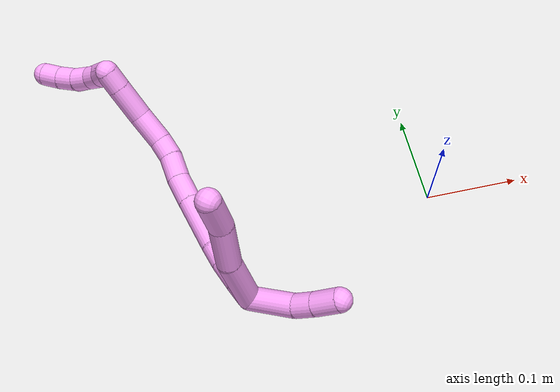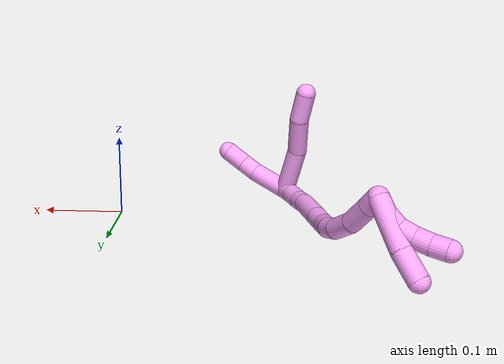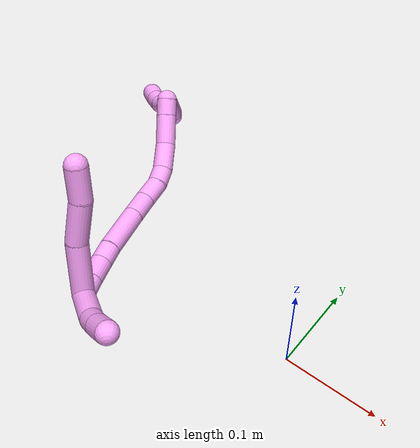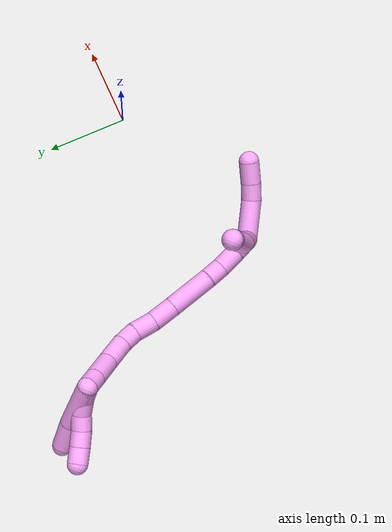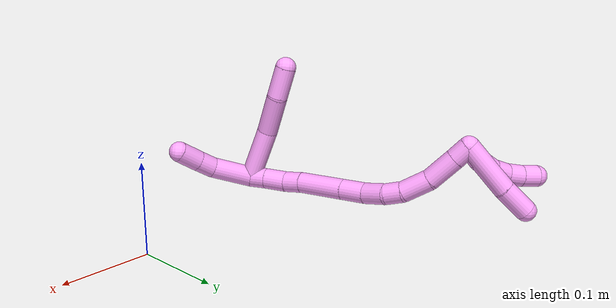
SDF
<sdf version="1.7">
 <world name="default">
  <model name="4">
   <static>0</static>
   <link name="4">
    <collision name="collision-cylinder-e_1_2_8">
     <pose>0.01801 0.024901 0.00799 -1.26032 0.603073 -0.446139</pose>
     <geometry><cylinder><radius>0.0125</radius><length>0.063506</length></cylinder></geometry>
     <surface>
      <friction><ode><mu>1.16</mu><mu2>1.16</mu2><slip1>0</slip1><slip2>0</slip2></ode></friction>
      <contact><ode><kp>1e+06</kp><kd>1</kd><max_vel>0</max_vel><min_depth>0.001</min_depth></ode></contact>
     </surface>
    </collision>
    <visual name="visual-cylinder-e_1_2_8">
     <pose>0.01801 0.024901 0.00799 -1.26032 0.603073 -0.446139</pose>
     <geometry><cylinder><radius>0.0125</radius><length>0.063506</length></cylinder></geometry>
     <material><ambient>1 0.65098 0.996078 1</ambient></material>
    </visual>
    <collision name="collision-cylinder-e_2_8_9">
     <pose>0.045808 0.071683 0.020093 -1.38495 0.414241 -0.345146</pose>
     <geometry><cylinder><radius>0.0125</radius><length>0.048641</length></cylinder></geometry>
     <surface>
      <friction><ode><mu>1.16</mu><mu2>1.16</mu2><slip1>0</slip1><slip2>0</slip2></ode></friction>
      <contact><ode><kp>1e+06</kp><kd>1</kd><max_vel>0</max_vel><min_depth>0.001</min_depth></ode></contact>
     </surface>
    </collision>
    <visual name="visual-cylinder-e_2_8_9">
     <pose>0.045808 0.071683 0.020093 -1.38495 0.414241 -0.345146</pose>
     <geometry><cylinder><radius>0.0125</radius><length>0.048641</length></cylinder></geometry>
     <material><ambient>1 0.65098 0.996078 1</ambient></material>
    </visual>
    <collision name="collision-cylinder-e_3_9_6">
     <pose>0.066674 0.108468 0.027863 -1.33029 0.625196 -0.496555</pose>
     <geometry><cylinder><radius>0.0125</radius><length>0.037853</length></cylinder></geometry>
     <surface>
      <friction><ode><mu>1.16</mu><mu2>1.16</mu2><slip1>0</slip1><slip2>0</slip2></ode></friction>
      <contact><ode><kp>1e+06</kp><kd>1</kd><max_vel>0</max_vel><min_depth>0.001</min_depth></ode></contact>
     </surface>
    </collision>
    <visual name="visual-cylinder-e_3_9_6">
     <pose>0.066674 0.108468 0.027863 -1.33029 0.625196 -0.496555</pose>
     <geometry><cylinder><radius>0.0125</radius><length>0.037853</length></cylinder></geometry>
     <material><ambient>1 0.65098 0.996078 1</ambient></material>
    </visual>
    <collision name="collision-cylinder-e_1_2_10">
     <pose>-0.000712 0.008224 -0.024019 -2.81169 -0.028025 0.167975</pose>
     <geometry><cylinder><radius>0.0125</radius><length>0.050797</length></cylinder></geometry>
     <surface>
      <friction><ode><mu>1.16</mu><mu2>1.16</mu2><slip1>0</slip1><slip2>0</slip2></ode></friction>
      <contact><ode><kp>1e+06</kp><kd>1</kd><max_vel>0</max_vel><min_depth>0.001</min_depth></ode></contact>
     </surface>
    </collision>
    <visual name="visual-cylinder-e_1_2_10">
     <pose>-0.000712 0.008224 -0.024019 -2.81169 -0.028025 0.167975</pose>
     <geometry><cylinder><radius>0.0125</radius><length>0.050797</length></cylinder></geometry>
     <material><ambient>1 0.65098 0.996078 1</ambient></material>
    </visual>
    <collision name="collision-cylinder-e_2_10_11">
     <pose>-0.001403 0.022529 -0.057036 -2.54735 0.001853 -0.006051</pose>
     <geometry><cylinder><radius>0.0125</radius><length>0.021718</length></cylinder></geometry>
     <surface>
      <friction><ode><mu>1.16</mu><mu2>1.16</mu2><slip1>0</slip1><slip2>0</slip2></ode></friction>
      <contact><ode><kp>1e+06</kp><kd>1</kd><max_vel>0</max_vel><min_depth>0.001</min_depth></ode></contact>
     </surface>
    </collision>
    <visual name="visual-cylinder-e_2_10_11">
     <pose>-0.001403 0.022529 -0.057036 -2.54735 0.001853 -0.006051</pose>
     <geometry><cylinder><radius>0.0125</radius><length>0.021718</length></cylinder></geometry>
     <material><ambient>1 0.65098 0.996078 1</ambient></material>
    </visual>
    <collision name="collision-cylinder-e_3_11_5">
     <pose>-0.001658 0.036995 -0.076917 -2.48503 -0.020011 0.058737</pose>
     <geometry><cylinder><radius>0.0125</radius><length>0.027485</length></cylinder></geometry>
     <surface>
      <friction><ode><mu>1.16</mu><mu2>1.16</mu2><slip1>0</slip1><slip2>0</slip2></ode></friction>
      <contact><ode><kp>1e+06</kp><kd>1</kd><max_vel>0</max_vel><min_depth>0.001</min_depth></ode></contact>
     </surface>
    </collision>
    <visual name="visual-cylinder-e_3_11_5">
     <pose>-0.001658 0.036995 -0.076917 -2.48503 -0.020011 0.058737</pose>
     <geometry><cylinder><radius>0.0125</radius><length>0.027485</length></cylinder></geometry>
     <material><ambient>1 0.65098 0.996078 1</ambient></material>
    </visual>
    <collision name="collision-cylinder-e_1_2_12">
     <pose>-0.002663 0.003248 0.009762 -0.321189 -0.253305 0.041248</pose>
     <geometry><cylinder><radius>0.0125</radius><length>0.021254</length></cylinder></geometry>
     <surface>
      <friction><ode><mu>1.16</mu><mu2>1.16</mu2><slip1>0</slip1><slip2>0</slip2></ode></friction>
      <contact><ode><kp>1e+06</kp><kd>1</kd><max_vel>0</max_vel><min_depth>0.001</min_depth></ode></contact>
     </surface>
    </collision>
    <visual name="visual-cylinder-e_1_2_12">
     <pose>-0.002663 0.003248 0.009762 -0.321189 -0.253305 0.041248</pose>
     <geometry><cylinder><radius>0.0125</radius><length>0.021254</length></cylinder></geometry>
     <material><ambient>1 0.65098 0.996078 1</ambient></material>
    </visual>
    <collision name="collision-cylinder-e_2_12_13">
     <pose>-0.009301 0.010606 0.031855 -0.321786 -0.296738 0.048506</pose>
     <geometry><cylinder><radius>0.0125</radius><length>0.027185</length></cylinder></geometry>
     <surface>
      <friction><ode><mu>1.16</mu><mu2>1.16</mu2><slip1>0</slip1><slip2>0</slip2></ode></friction>
      <contact><ode><kp>1e+06</kp><kd>1</kd><max_vel>0</max_vel><min_depth>0.001</min_depth></ode></contact>
     </surface>
    </collision>
    <visual name="visual-cylinder-e_2_12_13">
     <pose>-0.009301 0.010606 0.031855 -0.321786 -0.296738 0.048506</pose>
     <geometry><cylinder><radius>0.0125</radius><length>0.027185</length></cylinder></geometry>
     <material><ambient>1 0.65098 0.996078 1</ambient></material>
    </visual>
    <collision name="collision-cylinder-e_3_13_14">
     <pose>-0.016074 0.019416 0.053456 -0.469104 -0.263022 0.063193</pose>
     <geometry><cylinder><radius>0.0125</radius><length>0.021527</length></cylinder></geometry>
     <surface>
      <friction><ode><mu>1.16</mu><mu2>1.16</mu2><slip1>0</slip1><slip2>0</slip2></ode></friction>
      <contact><ode><kp>1e+06</kp><kd>1</kd><max_vel>0</max_vel><min_depth>0.001</min_depth></ode></contact>
     </surface>
    </collision>
    <visual name="visual-cylinder-e_3_13_14">
     <pose>-0.016074 0.019416 0.053456 -0.469104 -0.263022 0.063193</pose>
     <geometry><cylinder><radius>0.0125</radius><length>0.021527</length></cylinder></geometry>
     <material><ambient>1 0.65098 0.996078 1</ambient></material>
    </visual>
    <collision name="collision-cylinder-e_4_14_15">
     <pose>-0.028833 0.035183 0.086917 -0.429099 -0.35829 0.078878</pose>
     <geometry><cylinder><radius>0.0125</radius><length>0.056813</length></cylinder></geometry>
     <surface>
      <friction><ode><mu>1.16</mu><mu2>1.16</mu2><slip1>0</slip1><slip2>0</slip2></ode></friction>
      <contact><ode><kp>1e+06</kp><kd>1</kd><max_vel>0</max_vel><min_depth>0.001</min_depth></ode></contact>
     </surface>
    </collision>
    <visual name="visual-cylinder-e_4_14_15">
     <pose>-0.028833 0.035183 0.086917 -0.429099 -0.35829 0.078878</pose>
     <geometry><cylinder><radius>0.0125</radius><length>0.056813</length></cylinder></geometry>
     <material><ambient>1 0.65098 0.996078 1</ambient></material>
    </visual>
    <collision name="collision-cylinder-e_5_15_16">
     <pose>-0.044136 0.052248 0.123722 -0.443822 -0.365241 0.083289</pose>
     <geometry><cylinder><radius>0.0125</radius><length>0.029908</length></cylinder></geometry>
     <surface>
      <friction><ode><mu>1.16</mu><mu2>1.16</mu2><slip1>0</slip1><slip2>0</slip2></ode></friction>
      <contact><ode><kp>1e+06</kp><kd>1</kd><max_vel>0</max_vel><min_depth>0.001</min_depth></ode></contact>
     </surface>
    </collision>
    <visual name="visual-cylinder-e_5_15_16">
     <pose>-0.044136 0.052248 0.123722 -0.443822 -0.365241 0.083289</pose>
     <geometry><cylinder><radius>0.0125</radius><length>0.029908</length></cylinder></geometry>
     <material><ambient>1 0.65098 0.996078 1</ambient></material>
    </visual>
    <collision name="collision-cylinder-e_6_16_17">
     <pose>-0.054198 0.066189 0.14693 -0.643397 -0.342512 0.115153</pose>
     <geometry><cylinder><radius>0.0125</radius><length>0.028113</length></cylinder></geometry>
     <surface>
      <friction><ode><mu>1.16</mu><mu2>1.16</mu2><slip1>0</slip1><slip2>0</slip2></ode></friction>
      <contact><ode><kp>1e+06</kp><kd>1</kd><max_vel>0</max_vel><min_depth>0.001</min_depth></ode></contact>
     </surface>
    </collision>
    <visual name="visual-cylinder-e_6_16_17">
     <pose>-0.054198 0.066189 0.14693 -0.643397 -0.342512 0.115153</pose>
     <geometry><cylinder><radius>0.0125</radius><length>0.028113</length></cylinder></geometry>
     <material><ambient>1 0.65098 0.996078 1</ambient></material>
    </visual>
    <collision name="collision-cylinder-e_7_17_18">
     <pose>-0.060041 0.079756 0.166712 -0.549211 -0.10373 0.029247</pose>
     <geometry><cylinder><radius>0.0125</radius><length>0.021665</length></cylinder></geometry>
     <surface>
      <friction><ode><mu>1.16</mu><mu2>1.16</mu2><slip1>0</slip1><slip2>0</slip2></ode></friction>
      <contact><ode><kp>1e+06</kp><kd>1</kd><max_vel>0</max_vel><min_depth>0.001</min_depth></ode></contact>
     </surface>
    </collision>
    <visual name="visual-cylinder-e_7_17_18">
     <pose>-0.060041 0.079756 0.166712 -0.549211 -0.10373 0.029247</pose>
     <geometry><cylinder><radius>0.0125</radius><length>0.021665</length></cylinder></geometry>
     <material><ambient>1 0.65098 0.996078 1</ambient></material>
    </visual>
    <collision name="collision-cylinder-e_8_18_19">
     <pose>-0.058053 0.095441 0.189736 -0.628748 0.179777 -0.058597</pose>
     <geometry><cylinder><radius>0.0125</radius><length>0.034773</length></cylinder></geometry>
     <surface>
      <friction><ode><mu>1.16</mu><mu2>1.16</mu2><slip1>0</slip1><slip2>0</slip2></ode></friction>
      <contact><ode><kp>1e+06</kp><kd>1</kd><max_vel>0</max_vel><min_depth>0.001</min_depth></ode></contact>
     </surface>
    </collision>
    <visual name="visual-cylinder-e_8_18_19">
     <pose>-0.058053 0.095441 0.189736 -0.628748 0.179777 -0.058597</pose>
     <geometry><cylinder><radius>0.0125</radius><length>0.034773</length></cylinder></geometry>
     <material><ambient>1 0.65098 0.996078 1</ambient></material>
    </visual>
    <collision name="collision-cylinder-e_9_19_20">
     <pose>-0.048146 0.118398 0.215675 -0.817128 0.366997 -0.160345</pose>
     <geometry><cylinder><radius>0.0125</radius><length>0.037897</length></cylinder></geometry>
     <surface>
      <friction><ode><mu>1.16</mu><mu2>1.16</mu2><slip1>0</slip1><slip2>0</slip2></ode></friction>
      <contact><ode><kp>1e+06</kp><kd>1</kd><max_vel>0</max_vel><min_depth>0.001</min_depth></ode></contact>
     </surface>
    </collision>
    <visual name="visual-cylinder-e_9_19_20">
     <pose>-0.048146 0.118398 0.215675 -0.817128 0.366997 -0.160345</pose>
     <geometry><cylinder><radius>0.0125</radius><length>0.037897</length></cylinder></geometry>
     <material><ambient>1 0.65098 0.996078 1</ambient></material>
    </visual>
    <collision name="collision-cylinder-e_10_20_1">
     <pose>-0.037537 0.138535 0.234253 -0.841139 0.373773 -0.168744</pose>
     <geometry><cylinder><radius>0.0125</radius><length>0.020867</length></cylinder></geometry>
     <surface>
      <friction><ode><mu>1.16</mu><mu2>1.16</mu2><slip1>0</slip1><slip2>0</slip2></ode></friction>
      <contact><ode><kp>1e+06</kp><kd>1</kd><max_vel>0</max_vel><min_depth>0.001</min_depth></ode></contact>
     </surface>
    </collision>
    <visual name="visual-cylinder-e_10_20_1">
     <pose>-0.037537 0.138535 0.234253 -0.841139 0.373773 -0.168744</pose>
     <geometry><cylinder><radius>0.0125</radius><length>0.020867</length></cylinder></geometry>
     <material><ambient>1 0.65098 0.996078 1</ambient></material>
    </visual>
    <collision name="collision-cylinder-e_1_1_21">
     <pose>-0.038615 0.14028 0.247504 0.681369 -0.510626 -0.184534</pose>
     <geometry><cylinder><radius>0.0125</radius><length>0.02</length></cylinder></geometry>
     <surface>
      <friction><ode><mu>1.16</mu><mu2>1.16</mu2><slip1>0</slip1><slip2>0</slip2></ode></friction>
      <contact><ode><kp>1e+06</kp><kd>1</kd><max_vel>0</max_vel><min_depth>0.001</min_depth></ode></contact>
     </surface>
    </collision>
    <visual name="visual-cylinder-e_1_1_21">
     <pose>-0.038615 0.14028 0.247504 0.681369 -0.510626 -0.184534</pose>
     <geometry><cylinder><radius>0.0125</radius><length>0.02</length></cylinder></geometry>
     <material><ambient>1 0.65098 0.996078 1</ambient></material>
    </visual>
    <collision name="collision-cylinder-e_2_21_22">
     <pose>-0.045963 0.129985 0.262701 0.518096 -0.248614 -0.066201</pose>
     <geometry><cylinder><radius>0.0125</radius><length>0.02</length></cylinder></geometry>
     <surface>
      <friction><ode><mu>1.16</mu><mu2>1.16</mu2><slip1>0</slip1><slip2>0</slip2></ode></friction>
      <contact><ode><kp>1e+06</kp><kd>1</kd><max_vel>0</max_vel><min_depth>0.001</min_depth></ode></contact>
     </surface>
    </collision>
    <visual name="visual-cylinder-e_2_21_22">
     <pose>-0.045963 0.129985 0.262701 0.518096 -0.248614 -0.066201</pose>
     <geometry><cylinder><radius>0.0125</radius><length>0.02</length></cylinder></geometry>
     <material><ambient>1 0.65098 0.996078 1</ambient></material>
    </visual>
    <collision name="collision-cylinder-e_3_22_23">
     <pose>-0.047545 0.12079 0.280061 0.456984 0.087916 0.020458</pose>
     <geometry><cylinder><radius>0.0125</radius><length>0.02</length></cylinder></geometry>
     <surface>
      <friction><ode><mu>1.16</mu><mu2>1.16</mu2><slip1>0</slip1><slip2>0</slip2></ode></friction>
      <contact><ode><kp>1e+06</kp><kd>1</kd><max_vel>0</max_vel><min_depth>0.001</min_depth></ode></contact>
     </surface>
    </collision>
    <visual name="visual-cylinder-e_3_22_23">
     <pose>-0.047545 0.12079 0.280061 0.456984 0.087916 0.020458</pose>
     <geometry><cylinder><radius>0.0125</radius><length>0.02</length></cylinder></geometry>
     <material><ambient>1 0.65098 0.996078 1</ambient></material>
    </visual>
    <collision name="collision-cylinder-e_4_23_24">
     <pose>-0.045494 0.113946 0.298624 0.249068 0.117557 0.014733</pose>
     <geometry><cylinder><radius>0.0125</radius><length>0.02</length></cylinder></geometry>
     <surface>
      <friction><ode><mu>1.16</mu><mu2>1.16</mu2><slip1>0</slip1><slip2>0</slip2></ode></friction>
      <contact><ode><kp>1e+06</kp><kd>1</kd><max_vel>0</max_vel><min_depth>0.001</min_depth></ode></contact>
     </surface>
    </collision>
    <visual name="visual-cylinder-e_4_23_24">
     <pose>-0.045494 0.113946 0.298624 0.249068 0.117557 0.014733</pose>
     <geometry><cylinder><radius>0.0125</radius><length>0.02</length></cylinder></geometry>
     <material><ambient>1 0.65098 0.996078 1</ambient></material>
    </visual>
    <collision name="collision-cylinder-e_5_24_4">
     <pose>-0.042658 0.110148 0.318017 0.137368 0.167161 0.011526</pose>
     <geometry><cylinder><radius>0.0125</radius><length>0.02</length></cylinder></geometry>
     <surface>
      <friction><ode><mu>1.16</mu><mu2>1.16</mu2><slip1>0</slip1><slip2>0</slip2></ode></friction>
      <contact><ode><kp>1e+06</kp><kd>1</kd><max_vel>0</max_vel><min_depth>0.001</min_depth></ode></contact>
     </surface>
    </collision>
    <visual name="visual-cylinder-e_5_24_4">
     <pose>-0.042658 0.110148 0.318017 0.137368 0.167161 0.011526</pose>
     <geometry><cylinder><radius>0.0125</radius><length>0.02</length></cylinder></geometry>
     <material><ambient>1 0.65098 0.996078 1</ambient></material>
    </visual>
    <collision name="collision-cylinder-e_1_1_25">
     <pose>-0.050488 0.131017 0.263129 0.582559 -0.558446 -0.171496</pose>
     <geometry><cylinder><radius>0.0125</radius><length>0.063263</length></cylinder></geometry>
     <surface>
      <friction><ode><mu>1.16</mu><mu2>1.16</mu2><slip1>0</slip1><slip2>0</slip2></ode></friction>
      <contact><ode><kp>1e+06</kp><kd>1</kd><max_vel>0</max_vel><min_depth>0.001</min_depth></ode></contact>
     </surface>
    </collision>
    <visual name="visual-cylinder-e_1_1_25">
     <pose>-0.050488 0.131017 0.263129 0.582559 -0.558446 -0.171496</pose>
     <geometry><cylinder><radius>0.0125</radius><length>0.063263</length></cylinder></geometry>
     <material><ambient>1 0.65098 0.996078 1</ambient></material>
    </visual>
    <collision name="collision-cylinder-e_2_25_3">
     <pose>-0.075114 0.107588 0.299685 0.549543 -0.442527 -0.126656</pose>
     <geometry><cylinder><radius>0.0125</radius><length>0.036737</length></cylinder></geometry>
     <surface>
      <friction><ode><mu>1.16</mu><mu2>1.16</mu2><slip1>0</slip1><slip2>0</slip2></ode></friction>
      <contact><ode><kp>1e+06</kp><kd>1</kd><max_vel>0</max_vel><min_depth>0.001</min_depth></ode></contact>
     </surface>
    </collision>
    <visual name="visual-cylinder-e_2_25_3">
     <pose>-0.075114 0.107588 0.299685 0.549543 -0.442527 -0.126656</pose>
     <geometry><cylinder><radius>0.0125</radius><length>0.036737</length></cylinder></geometry>
     <material><ambient>1 0.65098 0.996078 1</ambient></material>
    </visual>
    <collision name="collision-sphere-3">
     <pose>-0.08298 0.098919 0.31384 0 -0 0</pose>
     <geometry><sphere><radius>0.0125</radius></sphere></geometry>
     <surface>
      <friction><ode><mu>1.16</mu><mu2>1.16</mu2><slip1>0</slip1><slip2>0</slip2></ode></friction>
      <contact><ode><kp>1e+06</kp><kd>1</kd><max_vel>0</max_vel><min_depth>0.001</min_depth></ode></contact>
     </surface>
    </collision>
    <visual name="visual-sphere-3">
     <pose>-0.08298 0.098919 0.31384 0 -0 0</pose>
     <geometry><sphere><radius>0.0125</radius></sphere></geometry>
     <material><ambient>1 0.65098 0.996078 1</ambient></material>
    </visual>
    <collision name="collision-sphere-25">
     <pose>-0.067248 0.116258 0.28553 0 -0 0</pose>
     <geometry><sphere><radius>0.0125</radius></sphere></geometry>
     <surface>
      <friction><ode><mu>1.16</mu><mu2>1.16</mu2><slip1>0</slip1><slip2>0</slip2></ode></friction>
      <contact><ode><kp>1e+06</kp><kd>1</kd><max_vel>0</max_vel><min_depth>0.001</min_depth></ode></contact>
     </surface>
    </collision>
    <visual name="visual-sphere-25">
     <pose>-0.067248 0.116258 0.28553 0 -0 0</pose>
     <geometry><sphere><radius>0.0125</radius></sphere></geometry>
     <material><ambient>1 0.65098 0.996078 1</ambient></material>
    </visual>
    <collision name="collision-sphere-4">
     <pose>-0.040994 0.108798 0.327784 0 -0 0</pose>
     <geometry><sphere><radius>0.0125</radius></sphere></geometry>
     <surface>
      <friction><ode><mu>1.16</mu><mu2>1.16</mu2><slip1>0</slip1><slip2>0</slip2></ode></friction>
      <contact><ode><kp>1e+06</kp><kd>1</kd><max_vel>0</max_vel><min_depth>0.001</min_depth></ode></contact>
     </surface>
    </collision>
    <visual name="visual-sphere-4">
     <pose>-0.040994 0.108798 0.327784 0 -0 0</pose>
     <geometry><sphere><radius>0.0125</radius></sphere></geometry>
     <material><ambient>1 0.65098 0.996078 1</ambient></material>
    </visual>
    <collision name="collision-sphere-24">
     <pose>-0.044321 0.111498 0.308249 0 -0 0</pose>
     <geometry><sphere><radius>0.0125</radius></sphere></geometry>
     <surface>
      <friction><ode><mu>1.16</mu><mu2>1.16</mu2><slip1>0</slip1><slip2>0</slip2></ode></friction>
      <contact><ode><kp>1e+06</kp><kd>1</kd><max_vel>0</max_vel><min_depth>0.001</min_depth></ode></contact>
     </surface>
    </collision>
    <visual name="visual-sphere-24">
     <pose>-0.044321 0.111498 0.308249 0 -0 0</pose>
     <geometry><sphere><radius>0.0125</radius></sphere></geometry>
     <material><ambient>1 0.65098 0.996078 1</ambient></material>
    </visual>
    <collision name="collision-sphere-23">
     <pose>-0.046667 0.116394 0.289 0 -0 0</pose>
     <geometry><sphere><radius>0.0125</radius></sphere></geometry>
     <surface>
      <friction><ode><mu>1.16</mu><mu2>1.16</mu2><slip1>0</slip1><slip2>0</slip2></ode></friction>
      <contact><ode><kp>1e+06</kp><kd>1</kd><max_vel>0</max_vel><min_depth>0.001</min_depth></ode></contact>
     </surface>
    </collision>
    <visual name="visual-sphere-23">
     <pose>-0.046667 0.116394 0.289 0 -0 0</pose>
     <geometry><sphere><radius>0.0125</radius></sphere></geometry>
     <material><ambient>1 0.65098 0.996078 1</ambient></material>
    </visual>
    <collision name="collision-sphere-22">
     <pose>-0.048423 0.125185 0.271121 0 -0 0</pose>
     <geometry><sphere><radius>0.0125</radius></sphere></geometry>
     <surface>
      <friction><ode><mu>1.16</mu><mu2>1.16</mu2><slip1>0</slip1><slip2>0</slip2></ode></friction>
      <contact><ode><kp>1e+06</kp><kd>1</kd><max_vel>0</max_vel><min_depth>0.001</min_depth></ode></contact>
     </surface>
    </collision>
    <visual name="visual-sphere-22">
     <pose>-0.048423 0.125185 0.271121 0 -0 0</pose>
     <geometry><sphere><radius>0.0125</radius></sphere></geometry>
     <material><ambient>1 0.65098 0.996078 1</ambient></material>
    </visual>
    <collision name="collision-sphere-21">
     <pose>-0.043502 0.134785 0.25428 0 -0 0</pose>
     <geometry><sphere><radius>0.0125</radius></sphere></geometry>
     <surface>
      <friction><ode><mu>1.16</mu><mu2>1.16</mu2><slip1>0</slip1><slip2>0</slip2></ode></friction>
      <contact><ode><kp>1e+06</kp><kd>1</kd><max_vel>0</max_vel><min_depth>0.001</min_depth></ode></contact>
     </surface>
    </collision>
    <visual name="visual-sphere-21">
     <pose>-0.043502 0.134785 0.25428 0 -0 0</pose>
     <geometry><sphere><radius>0.0125</radius></sphere></geometry>
     <material><ambient>1 0.65098 0.996078 1</ambient></material>
    </visual>
    <collision name="collision-sphere-1">
     <pose>-0.033728 0.145775 0.240728 0 -0 0</pose>
     <geometry><sphere><radius>0.0125</radius></sphere></geometry>
     <surface>
      <friction><ode><mu>1.16</mu><mu2>1.16</mu2><slip1>0</slip1><slip2>0</slip2></ode></friction>
      <contact><ode><kp>1e+06</kp><kd>1</kd><max_vel>0</max_vel><min_depth>0.001</min_depth></ode></contact>
     </surface>
    </collision>
    <visual name="visual-sphere-1">
     <pose>-0.033728 0.145775 0.240728 0 -0 0</pose>
     <geometry><sphere><radius>0.0125</radius></sphere></geometry>
     <material><ambient>1 0.65098 0.996078 1</ambient></material>
    </visual>
    <collision name="collision-sphere-11">
     <pose>-0.001383 0.028609 -0.066034 0 -0 0</pose>
     <geometry><sphere><radius>0.0125</radius></sphere></geometry>
     <surface>
      <friction><ode><mu>1.16</mu><mu2>1.16</mu2><slip1>0</slip1><slip2>0</slip2></ode></friction>
      <contact><ode><kp>1e+06</kp><kd>1</kd><max_vel>0</max_vel><min_depth>0.001</min_depth></ode></contact>
     </surface>
    </collision>
    <visual name="visual-sphere-11">
     <pose>-0.001383 0.028609 -0.066034 0 -0 0</pose>
     <geometry><sphere><radius>0.0125</radius></sphere></geometry>
     <material><ambient>1 0.65098 0.996078 1</ambient></material>
    </visual>
    <collision name="collision-sphere-10">
     <pose>-0.001423 0.016449 -0.048039 0 -0 0</pose>
     <geometry><sphere><radius>0.0125</radius></sphere></geometry>
     <surface>
      <friction><ode><mu>1.16</mu><mu2>1.16</mu2><slip1>0</slip1><slip2>0</slip2></ode></friction>
      <contact><ode><kp>1e+06</kp><kd>1</kd><max_vel>0</max_vel><min_depth>0.001</min_depth></ode></contact>
     </surface>
    </collision>
    <visual name="visual-sphere-10">
     <pose>-0.001423 0.016449 -0.048039 0 -0 0</pose>
     <geometry><sphere><radius>0.0125</radius></sphere></geometry>
     <material><ambient>1 0.65098 0.996078 1</ambient></material>
    </visual>
    <collision name="collision-sphere-6">
     <pose>0.077751 0.123372 0.031518 0 -0 0</pose>
     <geometry><sphere><radius>0.0125</radius></sphere></geometry>
     <surface>
      <friction><ode><mu>1.16</mu><mu2>1.16</mu2><slip1>0</slip1><slip2>0</slip2></ode></friction>
      <contact><ode><kp>1e+06</kp><kd>1</kd><max_vel>0</max_vel><min_depth>0.001</min_depth></ode></contact>
     </surface>
    </collision>
    <visual name="visual-sphere-6">
     <pose>0.077751 0.123372 0.031518 0 -0 0</pose>
     <geometry><sphere><radius>0.0125</radius></sphere></geometry>
     <material><ambient>1 0.65098 0.996078 1</ambient></material>
    </visual>
    <collision name="collision-sphere-9">
     <pose>0.055597 0.093563 0.024207 0 -0 0</pose>
     <geometry><sphere><radius>0.0125</radius></sphere></geometry>
     <surface>
      <friction><ode><mu>1.16</mu><mu2>1.16</mu2><slip1>0</slip1><slip2>0</slip2></ode></friction>
      <contact><ode><kp>1e+06</kp><kd>1</kd><max_vel>0</max_vel><min_depth>0.001</min_depth></ode></contact>
     </surface>
    </collision>
    <visual name="visual-sphere-9">
     <pose>0.055597 0.093563 0.024207 0 -0 0</pose>
     <geometry><sphere><radius>0.0125</radius></sphere></geometry>
     <material><ambient>1 0.65098 0.996078 1</ambient></material>
    </visual>
    <collision name="collision-sphere-2">
     <geometry><sphere><radius>0.0125</radius></sphere></geometry>
     <surface>
      <friction><ode><mu>1.16</mu><mu2>1.16</mu2><slip1>0</slip1><slip2>0</slip2></ode></friction>
      <contact><ode><kp>1e+06</kp><kd>1</kd><max_vel>0</max_vel><min_depth>0.001</min_depth></ode></contact>
     </surface>
    </collision>
    <visual name="visual-sphere-2">
     <geometry><sphere><radius>0.0125</radius></sphere></geometry>
     <material><ambient>1 0.65098 0.996078 1</ambient></material>
    </visual>
    <collision name="collision-sphere-19">
     <pose>-0.054945 0.105501 0.203571 0 -0 0</pose>
     <geometry><sphere><radius>0.0125</radius></sphere></geometry>
     <surface>
      <friction><ode><mu>1.16</mu><mu2>1.16</mu2><slip1>0</slip1><slip2>0</slip2></ode></friction>
      <contact><ode><kp>1e+06</kp><kd>1</kd><max_vel>0</max_vel><min_depth>0.001</min_depth></ode></contact>
     </surface>
    </collision>
    <visual name="visual-sphere-19">
     <pose>-0.054945 0.105501 0.203571 0 -0 0</pose>
     <geometry><sphere><radius>0.0125</radius></sphere></geometry>
     <material><ambient>1 0.65098 0.996078 1</ambient></material>
    </visual>
    <collision name="collision-sphere-8">
     <pose>0.036019 0.049803 0.01598 0 -0 0</pose>
     <geometry><sphere><radius>0.0125</radius></sphere></geometry>
     <surface>
      <friction><ode><mu>1.16</mu><mu2>1.16</mu2><slip1>0</slip1><slip2>0</slip2></ode></friction>
      <contact><ode><kp>1e+06</kp><kd>1</kd><max_vel>0</max_vel><min_depth>0.001</min_depth></ode></contact>
     </surface>
    </collision>
    <visual name="visual-sphere-8">
     <pose>0.036019 0.049803 0.01598 0 -0 0</pose>
     <geometry><sphere><radius>0.0125</radius></sphere></geometry>
     <material><ambient>1 0.65098 0.996078 1</ambient></material>
    </visual>
    <collision name="collision-sphere-5">
     <pose>-0.001933 0.045382 -0.0878 0 -0 0</pose>
     <geometry><sphere><radius>0.0125</radius></sphere></geometry>
     <surface>
      <friction><ode><mu>1.16</mu><mu2>1.16</mu2><slip1>0</slip1><slip2>0</slip2></ode></friction>
      <contact><ode><kp>1e+06</kp><kd>1</kd><max_vel>0</max_vel><min_depth>0.001</min_depth></ode></contact>
     </surface>
    </collision>
    <visual name="visual-sphere-5">
     <pose>-0.001933 0.045382 -0.0878 0 -0 0</pose>
     <geometry><sphere><radius>0.0125</radius></sphere></geometry>
     <material><ambient>1 0.65098 0.996078 1</ambient></material>
    </visual>
    <collision name="collision-sphere-12">
     <pose>-0.005326 0.006496 0.019523 0 -0 0</pose>
     <geometry><sphere><radius>0.0125</radius></sphere></geometry>
     <surface>
      <friction><ode><mu>1.16</mu><mu2>1.16</mu2><slip1>0</slip1><slip2>0</slip2></ode></friction>
      <contact><ode><kp>1e+06</kp><kd>1</kd><max_vel>0</max_vel><min_depth>0.001</min_depth></ode></contact>
     </surface>
    </collision>
    <visual name="visual-sphere-12">
     <pose>-0.005326 0.006496 0.019523 0 -0 0</pose>
     <geometry><sphere><radius>0.0125</radius></sphere></geometry>
     <material><ambient>1 0.65098 0.996078 1</ambient></material>
    </visual>
    <collision name="collision-sphere-13">
     <pose>-0.013275 0.014717 0.044186 0 -0 0</pose>
     <geometry><sphere><radius>0.0125</radius></sphere></geometry>
     <surface>
      <friction><ode><mu>1.16</mu><mu2>1.16</mu2><slip1>0</slip1><slip2>0</slip2></ode></friction>
      <contact><ode><kp>1e+06</kp><kd>1</kd><max_vel>0</max_vel><min_depth>0.001</min_depth></ode></contact>
     </surface>
    </collision>
    <visual name="visual-sphere-13">
     <pose>-0.013275 0.014717 0.044186 0 -0 0</pose>
     <geometry><sphere><radius>0.0125</radius></sphere></geometry>
     <material><ambient>1 0.65098 0.996078 1</ambient></material>
    </visual>
    <collision name="collision-sphere-14">
     <pose>-0.018872 0.024115 0.062727 0 -0 0</pose>
     <geometry><sphere><radius>0.0125</radius></sphere></geometry>
     <surface>
      <friction><ode><mu>1.16</mu><mu2>1.16</mu2><slip1>0</slip1><slip2>0</slip2></ode></friction>
      <contact><ode><kp>1e+06</kp><kd>1</kd><max_vel>0</max_vel><min_depth>0.001</min_depth></ode></contact>
     </surface>
    </collision>
    <visual name="visual-sphere-14">
     <pose>-0.018872 0.024115 0.062727 0 -0 0</pose>
     <geometry><sphere><radius>0.0125</radius></sphere></geometry>
     <material><ambient>1 0.65098 0.996078 1</ambient></material>
    </visual>
    <collision name="collision-sphere-15">
     <pose>-0.038795 0.046251 0.111108 0 -0 0</pose>
     <geometry><sphere><radius>0.0125</radius></sphere></geometry>
     <surface>
      <friction><ode><mu>1.16</mu><mu2>1.16</mu2><slip1>0</slip1><slip2>0</slip2></ode></friction>
      <contact><ode><kp>1e+06</kp><kd>1</kd><max_vel>0</max_vel><min_depth>0.001</min_depth></ode></contact>
     </surface>
    </collision>
    <visual name="visual-sphere-15">
     <pose>-0.038795 0.046251 0.111108 0 -0 0</pose>
     <geometry><sphere><radius>0.0125</radius></sphere></geometry>
     <material><ambient>1 0.65098 0.996078 1</ambient></material>
    </visual>
    <collision name="collision-sphere-16">
     <pose>-0.049477 0.058246 0.136337 0 -0 0</pose>
     <geometry><sphere><radius>0.0125</radius></sphere></geometry>
     <surface>
      <friction><ode><mu>1.16</mu><mu2>1.16</mu2><slip1>0</slip1><slip2>0</slip2></ode></friction>
      <contact><ode><kp>1e+06</kp><kd>1</kd><max_vel>0</max_vel><min_depth>0.001</min_depth></ode></contact>
     </surface>
    </collision>
    <visual name="visual-sphere-16">
     <pose>-0.049477 0.058246 0.136337 0 -0 0</pose>
     <geometry><sphere><radius>0.0125</radius></sphere></geometry>
     <material><ambient>1 0.65098 0.996078 1</ambient></material>
    </visual>
    <collision name="collision-sphere-17">
     <pose>-0.058919 0.074132 0.157522 0 -0 0</pose>
     <geometry><sphere><radius>0.0125</radius></sphere></geometry>
     <surface>
      <friction><ode><mu>1.16</mu><mu2>1.16</mu2><slip1>0</slip1><slip2>0</slip2></ode></friction>
      <contact><ode><kp>1e+06</kp><kd>1</kd><max_vel>0</max_vel><min_depth>0.001</min_depth></ode></contact>
     </surface>
    </collision>
    <visual name="visual-sphere-17">
     <pose>-0.058919 0.074132 0.157522 0 -0 0</pose>
     <geometry><sphere><radius>0.0125</radius></sphere></geometry>
     <material><ambient>1 0.65098 0.996078 1</ambient></material>
    </visual>
    <collision name="collision-sphere-18">
     <pose>-0.061162 0.08538 0.175902 0 -0 0</pose>
     <geometry><sphere><radius>0.0125</radius></sphere></geometry>
     <surface>
      <friction><ode><mu>1.16</mu><mu2>1.16</mu2><slip1>0</slip1><slip2>0</slip2></ode></friction>
      <contact><ode><kp>1e+06</kp><kd>1</kd><max_vel>0</max_vel><min_depth>0.001</min_depth></ode></contact>
     </surface>
    </collision>
    <visual name="visual-sphere-18">
     <pose>-0.061162 0.08538 0.175902 0 -0 0</pose>
     <geometry><sphere><radius>0.0125</radius></sphere></geometry>
     <material><ambient>1 0.65098 0.996078 1</ambient></material>
    </visual>
    <collision name="collision-sphere-20">
     <pose>-0.041347 0.131295 0.227778 0 -0 0</pose>
     <geometry><sphere><radius>0.0125</radius></sphere></geometry>
     <surface>
      <friction><ode><mu>1.16</mu><mu2>1.16</mu2><slip1>0</slip1><slip2>0</slip2></ode></friction>
      <contact><ode><kp>1e+06</kp><kd>1</kd><max_vel>0</max_vel><min_depth>0.001</min_depth></ode></contact>
     </surface>
    </collision>
    <visual name="visual-sphere-20">
     <pose>-0.041347 0.131295 0.227778 0 -0 0</pose>
     <geometry><sphere><radius>0.0125</radius></sphere></geometry>
     <material><ambient>1 0.65098 0.996078 1</ambient></material>
    </visual>
    <inertial>
     <pose>-0.020853 0.072352 0.122699 0 -0 0</pose>
     <mass>0.75</mass>
     <inertia>
      <ixx>0.000106</ixx>
      <ixy>0</ixy>
      <ixz>0</ixz>
      <iyy>7.5e-05</iyy>
      <iyz>0</iyz>
      <izz>-1.7e-05</izz>
     </inertia>
    </inertial>
   </link>
   <pose>-0.212925 -0.076272 0.012437 1.68895 -0.644881 -2.40377</pose>
  </model>
 </world>
</sdf>
